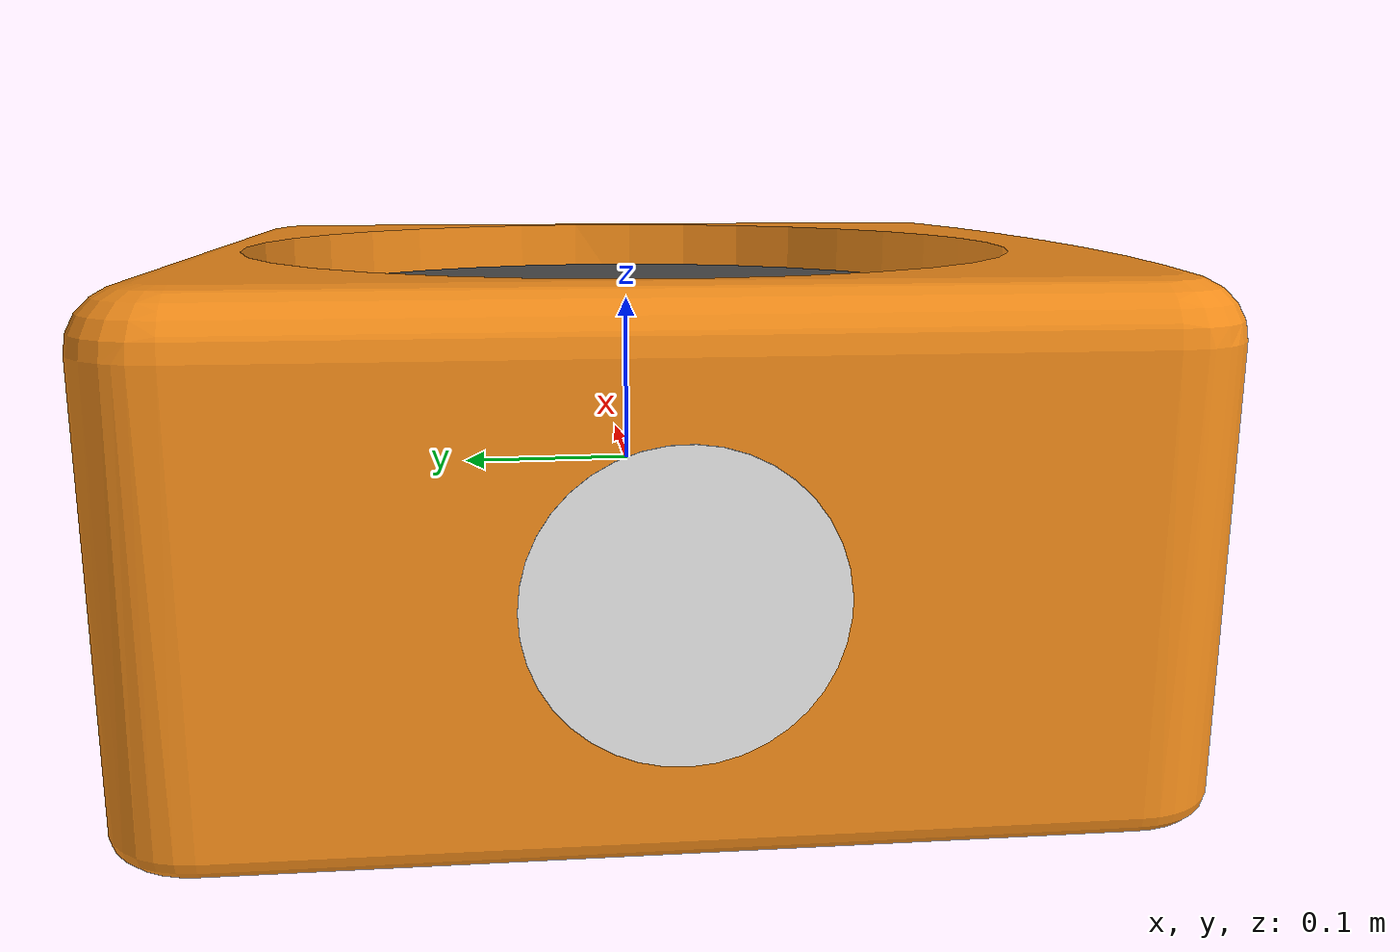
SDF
<?xml version="1.0" encoding="utf-8"?>
<sdf version='1.7'>
  <model name='pegasus'>
    <link name='base_link'>
      <inertial>
        <pose>-0.004998 0.011186 -0.018715 0 -0 0</pose>
        <mass>37.2557</mass>
        <inertia>
          <ixx>1.48096</ixx>
          <ixy>0.00281766</ixy>
          <ixz>0.00235324</ixz>
          <iyy>2.3117</iyy>
          <iyz>-0.0307391</iyz>
          <izz>2.31426</izz>
        </inertia>
      </inertial>
      <collision name='base_link_collision'>
        <pose>0 0 0 0 -0 0</pose>
        <geometry>
          <mesh>
            <scale>1 1 1</scale>
            <uri>model://pegasus/meshes/base_link.STL</uri>
          </mesh>
        </geometry>
      </collision>
      <collision name='base_link_fixed_joint_lump__inner_link_collision_1'>
        <pose>-0.01 -0.005052 -0.01 -1.5708 -0 3.14159</pose>
        <geometry>
          <mesh>
            <scale>1 1 1</scale>
            <uri>model://pegasus/meshes/inner_link.STL</uri>
          </mesh>
        </geometry>
      </collision>
      <collision name='base_link_fixed_joint_lump__symbol_link_collision_2'>
        <pose>0 -0.005052 -0.01 3.14159 -1.5617 -1.5708</pose>
        <geometry>
          <mesh>
            <scale>1 1 1</scale>
            <uri>model://pegasus/meshes/symbol_link.STL</uri>
          </mesh>
        </geometry>
      </collision>
      <visual name='base_link_visual'>
        <pose>0 0 0 0 -0 0</pose>
        <geometry>
          <mesh>
            <scale>1 1 1</scale>
            <uri>model://pegasus/meshes/base_link.STL</uri>
          </mesh>
        </geometry>
        <material>
          <script>
            <name>Gazebo/Orange</name>
            <uri>file://media/materials/scripts/gazebo.material</uri>
          </script>
        </material>
      </visual>
      <visual name='base_link_fixed_joint_lump__inner_link_visual_1'>
        <pose>-0.01 -0.005052 -0.01 -1.5708 -0 3.14159</pose>
        <geometry>
          <mesh>
            <scale>1 1 1</scale>
            <uri>model://pegasus/meshes/inner_link.STL</uri>
          </mesh>
        </geometry>
        <material>
          <script>
            <name>Gazebo/DarkGray</name>
            <uri>file://media/materials/scripts/gazebo.material</uri>
          </script>
        </material>
      </visual>
      <visual name='base_link_fixed_joint_lump__symbol_link_visual_2'>
        <pose>0 -0.005052 -0.01 3.14159 -1.5617 -1.5708</pose>
        <geometry>
          <mesh>
            <scale>1 1 1</scale>
            <uri>model://pegasus/meshes/symbol_link.STL</uri>
          </mesh>
        </geometry>
        <material>
          <script>
            <name>Gazebo/White</name>
            <uri>file://media/materials/scripts/gazebo.material</uri>
          </script>
        </material>
      </visual>
    </link>
  </model>
</sdf>
